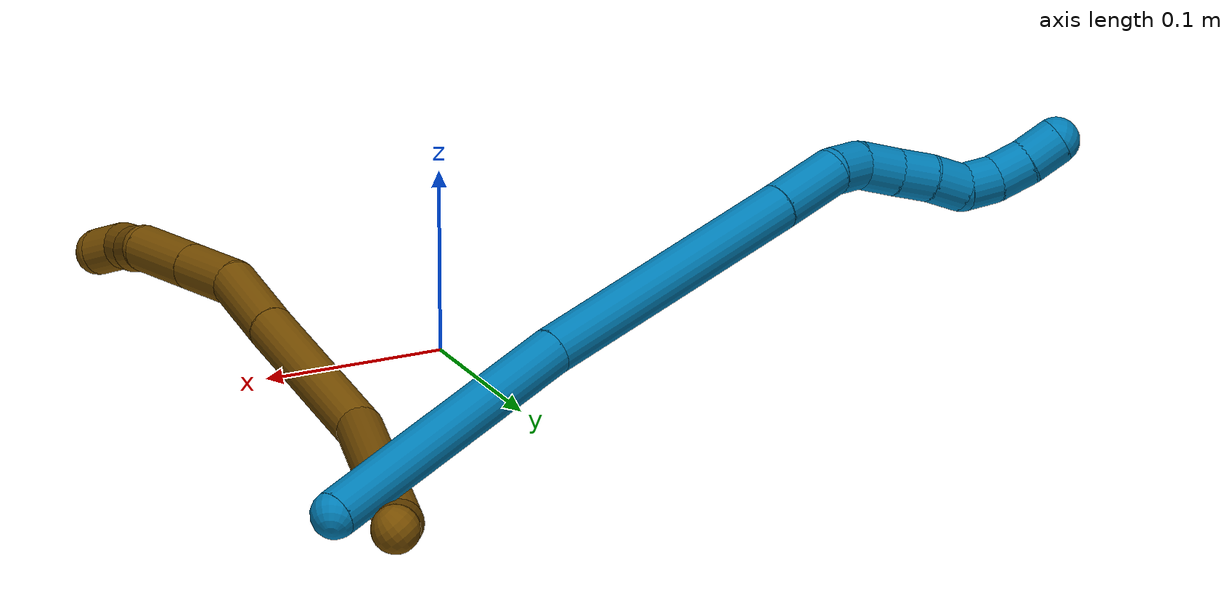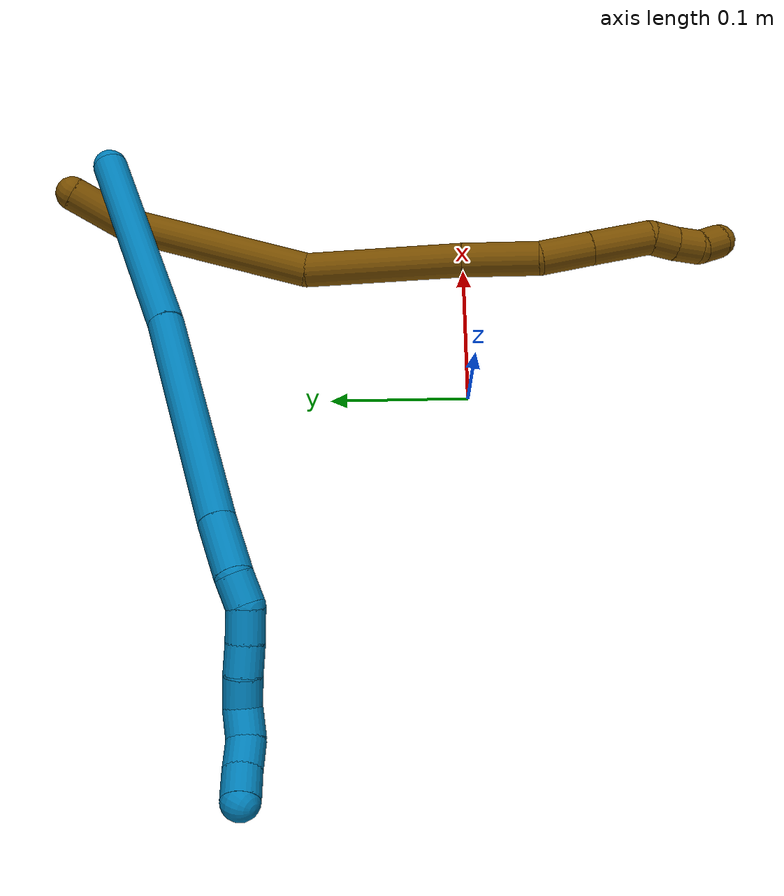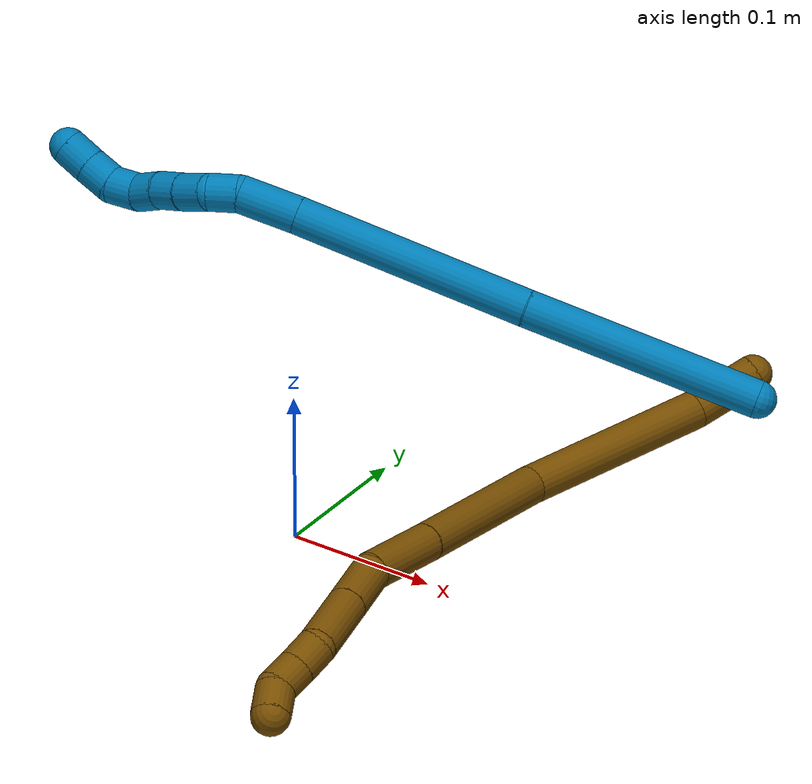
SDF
<sdf version="1.7">
 <world name="default">
  <model name="9">
   <static>0</static>
   <link name="9">
    <collision name="collision-cylinder-e_1_1_4">
     <pose>-0.047143 -5e-06 0.063397 7.5e-05 -0.639407 -2.5e-05</pose>
     <geometry><cylinder><radius>0.0125</radius><length>0.158008</length></cylinder></geometry>
     <surface>
      <friction><ode><mu>1.16</mu><mu2>1.16</mu2><slip1>0</slip1><slip2>0</slip2></ode></friction>
      <contact><ode><kp>1e+06</kp><kd>1</kd><max_vel>0</max_vel><min_depth>0.001</min_depth></ode></contact>
     </surface>
    </collision>
    <visual name="visual-cylinder-e_1_1_4">
     <pose>-0.047143 -5e-06 0.063397 7.5e-05 -0.639407 -2.5e-05</pose>
     <geometry><cylinder><radius>0.0125</radius><length>0.158008</length></cylinder></geometry>
     <material><ambient>0 0.490196 0.709804 1</ambient></material>
    </visual>
    <collision name="collision-cylinder-e_2_4_5">
     <pose>-0.146587 0.000235 0.186958 -0.004058 -0.715581 0.001517</pose>
     <geometry><cylinder><radius>0.0125</radius><length>0.159439</length></cylinder></geometry>
     <surface>
      <friction><ode><mu>1.16</mu><mu2>1.16</mu2><slip1>0</slip1><slip2>0</slip2></ode></friction>
      <contact><ode><kp>1e+06</kp><kd>1</kd><max_vel>0</max_vel><min_depth>0.001</min_depth></ode></contact>
     </surface>
    </collision>
    <visual name="visual-cylinder-e_2_4_5">
     <pose>-0.146587 0.000235 0.186958 -0.004058 -0.715581 0.001517</pose>
     <geometry><cylinder><radius>0.0125</radius><length>0.159439</length></cylinder></geometry>
     <material><ambient>0 0.490196 0.709804 1</ambient></material>
    </visual>
    <collision name="collision-cylinder-e_3_5_6">
     <pose>-0.211496 1.7e-05 0.262564 0.029875 -0.684557 -0.010645</pose>
     <geometry><cylinder><radius>0.0125</radius><length>0.039881</length></cylinder></geometry>
     <surface>
      <friction><ode><mu>1.16</mu><mu2>1.16</mu2><slip1>0</slip1><slip2>0</slip2></ode></friction>
      <contact><ode><kp>1e+06</kp><kd>1</kd><max_vel>0</max_vel><min_depth>0.001</min_depth></ode></contact>
     </surface>
    </collision>
    <visual name="visual-cylinder-e_3_5_6">
     <pose>-0.211496 1.7e-05 0.262564 0.029875 -0.684557 -0.010645</pose>
     <geometry><cylinder><radius>0.0125</radius><length>0.039881</length></cylinder></geometry>
     <material><ambient>0 0.490196 0.709804 1</ambient></material>
    </visual>
    <collision name="collision-cylinder-e_4_6_7">
     <pose>-0.230953 -0.003731 0.284847 0.447863 -0.733976 -0.174651</pose>
     <geometry><cylinder><radius>0.0125</radius><length>0.020445</length></cylinder></geometry>
     <surface>
      <friction><ode><mu>1.16</mu><mu2>1.16</mu2><slip1>0</slip1><slip2>0</slip2></ode></friction>
      <contact><ode><kp>1e+06</kp><kd>1</kd><max_vel>0</max_vel><min_depth>0.001</min_depth></ode></contact>
     </surface>
    </collision>
    <visual name="visual-cylinder-e_4_6_7">
     <pose>-0.230953 -0.003731 0.284847 0.447863 -0.733976 -0.174651</pose>
     <geometry><cylinder><radius>0.0125</radius><length>0.020445</length></cylinder></geometry>
     <material><ambient>0 0.490196 0.709804 1</ambient></material>
    </visual>
    <collision name="collision-cylinder-e_5_7_8">
     <pose>-0.247754 -0.010732 0.294652 0.897313 -1.12548 -0.589609</pose>
     <geometry><cylinder><radius>0.0125</radius><length>0.022059</length></cylinder></geometry>
     <surface>
      <friction><ode><mu>1.16</mu><mu2>1.16</mu2><slip1>0</slip1><slip2>0</slip2></ode></friction>
      <contact><ode><kp>1e+06</kp><kd>1</kd><max_vel>0</max_vel><min_depth>0.001</min_depth></ode></contact>
     </surface>
    </collision>
    <visual name="visual-cylinder-e_5_7_8">
     <pose>-0.247754 -0.010732 0.294652 0.897313 -1.12548 -0.589609</pose>
     <geometry><cylinder><radius>0.0125</radius><length>0.022059</length></cylinder></geometry>
     <material><ambient>0 0.490196 0.709804 1</ambient></material>
    </visual>
    <collision name="collision-cylinder-e_6_8_9">
     <pose>-0.267028 -0.017272 0.300116 0.846563 -1.18605 -0.58955</pose>
     <geometry><cylinder><radius>0.0125</radius><length>0.020112</length></cylinder></geometry>
     <surface>
      <friction><ode><mu>1.16</mu><mu2>1.16</mu2><slip1>0</slip1><slip2>0</slip2></ode></friction>
      <contact><ode><kp>1e+06</kp><kd>1</kd><max_vel>0</max_vel><min_depth>0.001</min_depth></ode></contact>
     </surface>
    </collision>
    <visual name="visual-cylinder-e_6_8_9">
     <pose>-0.267028 -0.017272 0.300116 0.846563 -1.18605 -0.58955</pose>
     <geometry><cylinder><radius>0.0125</radius><length>0.020112</length></cylinder></geometry>
     <material><ambient>0 0.490196 0.709804 1</ambient></material>
    </visual>
    <collision name="collision-cylinder-e_7_9_10">
     <pose>-0.285281 -0.024099 0.304687 1.09304 -1.10376 -0.716738</pose>
     <geometry><cylinder><radius>0.0125</radius><length>0.020006</length></cylinder></geometry>
     <surface>
      <friction><ode><mu>1.16</mu><mu2>1.16</mu2><slip1>0</slip1><slip2>0</slip2></ode></friction>
      <contact><ode><kp>1e+06</kp><kd>1</kd><max_vel>0</max_vel><min_depth>0.001</min_depth></ode></contact>
     </surface>
    </collision>
    <visual name="visual-cylinder-e_7_9_10">
     <pose>-0.285281 -0.024099 0.304687 1.09304 -1.10376 -0.716738</pose>
     <geometry><cylinder><radius>0.0125</radius><length>0.020006</length></cylinder></geometry>
     <material><ambient>0 0.490196 0.709804 1</ambient></material>
    </visual>
    <collision name="collision-cylinder-e_8_10_11">
     <pose>-0.302299 -0.029287 0.312559 0.20221 -0.938697 -0.10281</pose>
     <geometry><cylinder><radius>0.0125</radius><length>0.020044</length></cylinder></geometry>
     <surface>
      <friction><ode><mu>1.16</mu><mu2>1.16</mu2><slip1>0</slip1><slip2>0</slip2></ode></friction>
      <contact><ode><kp>1e+06</kp><kd>1</kd><max_vel>0</max_vel><min_depth>0.001</min_depth></ode></contact>
     </surface>
    </collision>
    <visual name="visual-cylinder-e_8_10_11">
     <pose>-0.302299 -0.029287 0.312559 0.20221 -0.938697 -0.10281</pose>
     <geometry><cylinder><radius>0.0125</radius><length>0.020044</length></cylinder></geometry>
     <material><ambient>0 0.490196 0.709804 1</ambient></material>
    </visual>
    <collision name="collision-cylinder-e_9_11_12">
     <pose>-0.318264 -0.02787 0.323939 -0.437037 -0.907385 0.215725</pose>
     <geometry><cylinder><radius>0.0125</radius><length>0.020001</length></cylinder></geometry>
     <surface>
      <friction><ode><mu>1.16</mu><mu2>1.16</mu2><slip1>0</slip1><slip2>0</slip2></ode></friction>
      <contact><ode><kp>1e+06</kp><kd>1</kd><max_vel>0</max_vel><min_depth>0.001</min_depth></ode></contact>
     </surface>
    </collision>
    <visual name="visual-cylinder-e_9_11_12">
     <pose>-0.318264 -0.02787 0.323939 -0.437037 -0.907385 0.215725</pose>
     <geometry><cylinder><radius>0.0125</radius><length>0.020001</length></cylinder></geometry>
     <material><ambient>0 0.490196 0.709804 1</ambient></material>
    </visual>
    <collision name="collision-cylinder-e_10_12_2">
     <pose>-0.333201 -0.022098 0.33586 -0.463011 -0.783264 0.194086</pose>
     <geometry><cylinder><radius>0.0125</radius><length>0.020005</length></cylinder></geometry>
     <surface>
      <friction><ode><mu>1.16</mu><mu2>1.16</mu2><slip1>0</slip1><slip2>0</slip2></ode></friction>
      <contact><ode><kp>1e+06</kp><kd>1</kd><max_vel>0</max_vel><min_depth>0.001</min_depth></ode></contact>
     </surface>
    </collision>
    <visual name="visual-cylinder-e_10_12_2">
     <pose>-0.333201 -0.022098 0.33586 -0.463011 -0.783264 0.194086</pose>
     <geometry><cylinder><radius>0.0125</radius><length>0.020005</length></cylinder></geometry>
     <material><ambient>0 0.490196 0.709804 1</ambient></material>
    </visual>
    <collision name="collision-sphere-2">
     <pose>-0.340258 -0.018932 0.342202 0 -0 0</pose>
     <geometry><sphere><radius>0.0125</radius></sphere></geometry>
     <surface>
      <friction><ode><mu>1.16</mu><mu2>1.16</mu2><slip1>0</slip1><slip2>0</slip2></ode></friction>
      <contact><ode><kp>1e+06</kp><kd>1</kd><max_vel>0</max_vel><min_depth>0.001</min_depth></ode></contact>
     </surface>
    </collision>
    <visual name="visual-sphere-2">
     <pose>-0.340258 -0.018932 0.342202 0 -0 0</pose>
     <geometry><sphere><radius>0.0125</radius></sphere></geometry>
     <material><ambient>0 0.490196 0.709804 1</ambient></material>
    </visual>
    <collision name="collision-sphere-12">
     <pose>-0.326143 -0.025264 0.329519 0 -0 0</pose>
     <geometry><sphere><radius>0.0125</radius></sphere></geometry>
     <surface>
      <friction><ode><mu>1.16</mu><mu2>1.16</mu2><slip1>0</slip1><slip2>0</slip2></ode></friction>
      <contact><ode><kp>1e+06</kp><kd>1</kd><max_vel>0</max_vel><min_depth>0.001</min_depth></ode></contact>
     </surface>
    </collision>
    <visual name="visual-sphere-12">
     <pose>-0.326143 -0.025264 0.329519 0 -0 0</pose>
     <geometry><sphere><radius>0.0125</radius></sphere></geometry>
     <material><ambient>0 0.490196 0.709804 1</ambient></material>
    </visual>
    <collision name="collision-sphere-11">
     <pose>-0.310384 -0.030477 0.318359 0 -0 0</pose>
     <geometry><sphere><radius>0.0125</radius></sphere></geometry>
     <surface>
      <friction><ode><mu>1.16</mu><mu2>1.16</mu2><slip1>0</slip1><slip2>0</slip2></ode></friction>
      <contact><ode><kp>1e+06</kp><kd>1</kd><max_vel>0</max_vel><min_depth>0.001</min_depth></ode></contact>
     </surface>
    </collision>
    <visual name="visual-sphere-11">
     <pose>-0.310384 -0.030477 0.318359 0 -0 0</pose>
     <geometry><sphere><radius>0.0125</radius></sphere></geometry>
     <material><ambient>0 0.490196 0.709804 1</ambient></material>
    </visual>
    <collision name="collision-sphere-10">
     <pose>-0.294213 -0.028098 0.306758 0 -0 0</pose>
     <geometry><sphere><radius>0.0125</radius></sphere></geometry>
     <surface>
      <friction><ode><mu>1.16</mu><mu2>1.16</mu2><slip1>0</slip1><slip2>0</slip2></ode></friction>
      <contact><ode><kp>1e+06</kp><kd>1</kd><max_vel>0</max_vel><min_depth>0.001</min_depth></ode></contact>
     </surface>
    </collision>
    <visual name="visual-sphere-10">
     <pose>-0.294213 -0.028098 0.306758 0 -0 0</pose>
     <geometry><sphere><radius>0.0125</radius></sphere></geometry>
     <material><ambient>0 0.490196 0.709804 1</ambient></material>
    </visual>
    <collision name="collision-sphere-9">
     <pose>-0.276349 -0.020099 0.302616 0 -0 0</pose>
     <geometry><sphere><radius>0.0125</radius></sphere></geometry>
     <surface>
      <friction><ode><mu>1.16</mu><mu2>1.16</mu2><slip1>0</slip1><slip2>0</slip2></ode></friction>
      <contact><ode><kp>1e+06</kp><kd>1</kd><max_vel>0</max_vel><min_depth>0.001</min_depth></ode></contact>
     </surface>
    </collision>
    <visual name="visual-sphere-9">
     <pose>-0.276349 -0.020099 0.302616 0 -0 0</pose>
     <geometry><sphere><radius>0.0125</radius></sphere></geometry>
     <material><ambient>0 0.490196 0.709804 1</ambient></material>
    </visual>
    <collision name="collision-sphere-4">
     <pose>-0.094286 -1e-05 0.126793 0 -0 0</pose>
     <geometry><sphere><radius>0.0125</radius></sphere></geometry>
     <surface>
      <friction><ode><mu>1.16</mu><mu2>1.16</mu2><slip1>0</slip1><slip2>0</slip2></ode></friction>
      <contact><ode><kp>1e+06</kp><kd>1</kd><max_vel>0</max_vel><min_depth>0.001</min_depth></ode></contact>
     </surface>
    </collision>
    <visual name="visual-sphere-4">
     <pose>-0.094286 -1e-05 0.126793 0 -0 0</pose>
     <geometry><sphere><radius>0.0125</radius></sphere></geometry>
     <material><ambient>0 0.490196 0.709804 1</ambient></material>
    </visual>
    <collision name="collision-sphere-1">
     <geometry><sphere><radius>0.0125</radius></sphere></geometry>
     <surface>
      <friction><ode><mu>1.16</mu><mu2>1.16</mu2><slip1>0</slip1><slip2>0</slip2></ode></friction>
      <contact><ode><kp>1e+06</kp><kd>1</kd><max_vel>0</max_vel><min_depth>0.001</min_depth></ode></contact>
     </surface>
    </collision>
    <visual name="visual-sphere-1">
     <geometry><sphere><radius>0.0125</radius></sphere></geometry>
     <material><ambient>0 0.490196 0.709804 1</ambient></material>
    </visual>
    <collision name="collision-sphere-8">
     <pose>-0.257707 -0.014445 0.297615 0 -0 0</pose>
     <geometry><sphere><radius>0.0125</radius></sphere></geometry>
     <surface>
      <friction><ode><mu>1.16</mu><mu2>1.16</mu2><slip1>0</slip1><slip2>0</slip2></ode></friction>
      <contact><ode><kp>1e+06</kp><kd>1</kd><max_vel>0</max_vel><min_depth>0.001</min_depth></ode></contact>
     </surface>
    </collision>
    <visual name="visual-sphere-8">
     <pose>-0.257707 -0.014445 0.297615 0 -0 0</pose>
     <geometry><sphere><radius>0.0125</radius></sphere></geometry>
     <material><ambient>0 0.490196 0.709804 1</ambient></material>
    </visual>
    <collision name="collision-sphere-5">
     <pose>-0.198887 0.000479 0.247123 0 -0 0</pose>
     <geometry><sphere><radius>0.0125</radius></sphere></geometry>
     <surface>
      <friction><ode><mu>1.16</mu><mu2>1.16</mu2><slip1>0</slip1><slip2>0</slip2></ode></friction>
      <contact><ode><kp>1e+06</kp><kd>1</kd><max_vel>0</max_vel><min_depth>0.001</min_depth></ode></contact>
     </surface>
    </collision>
    <visual name="visual-sphere-5">
     <pose>-0.198887 0.000479 0.247123 0 -0 0</pose>
     <geometry><sphere><radius>0.0125</radius></sphere></geometry>
     <material><ambient>0 0.490196 0.709804 1</ambient></material>
    </visual>
    <collision name="collision-sphere-6">
     <pose>-0.224105 -0.000444 0.278005 0 -0 0</pose>
     <geometry><sphere><radius>0.0125</radius></sphere></geometry>
     <surface>
      <friction><ode><mu>1.16</mu><mu2>1.16</mu2><slip1>0</slip1><slip2>0</slip2></ode></friction>
      <contact><ode><kp>1e+06</kp><kd>1</kd><max_vel>0</max_vel><min_depth>0.001</min_depth></ode></contact>
     </surface>
    </collision>
    <visual name="visual-sphere-6">
     <pose>-0.224105 -0.000444 0.278005 0 -0 0</pose>
     <geometry><sphere><radius>0.0125</radius></sphere></geometry>
     <material><ambient>0 0.490196 0.709804 1</ambient></material>
    </visual>
    <collision name="collision-sphere-7">
     <pose>-0.2378 -0.007018 0.291689 0 -0 0</pose>
     <geometry><sphere><radius>0.0125</radius></sphere></geometry>
     <surface>
      <friction><ode><mu>1.16</mu><mu2>1.16</mu2><slip1>0</slip1><slip2>0</slip2></ode></friction>
      <contact><ode><kp>1e+06</kp><kd>1</kd><max_vel>0</max_vel><min_depth>0.001</min_depth></ode></contact>
     </surface>
    </collision>
    <visual name="visual-sphere-7">
     <pose>-0.2378 -0.007018 0.291689 0 -0 0</pose>
     <geometry><sphere><radius>0.0125</radius></sphere></geometry>
     <material><ambient>0 0.490196 0.709804 1</ambient></material>
    </visual>
    <inertial>
     <pose>-0.159222 -0.005383 0.18843 0 -0 0</pose>
     <mass>0.5</mass>
     <inertia>
      <ixx>0.000512</ixx>
      <ixy>0</ixy>
      <ixz>0</ixz>
      <iyy>0.000693</iyy>
      <iyz>0</iyz>
      <izz>0.000466</izz>
     </inertia>
    </inertial>
   </link>
   <pose>0.176683 0.261126 0.03072 1.06262 -0.167689 -0.472239</pose>
  </model>
  <model name="12">
   <static>0</static>
   <link name="12">
    <collision name="collision-cylinder-e_1_1_4">
     <pose>-0.014471 -0.017422 -0.003614 1.77535 -0.682795 -0.823287</pose>
     <geometry><cylinder><radius>0.0125</radius><length>0.045869</length></cylinder></geometry>
     <surface>
      <friction><ode><mu>1.16</mu><mu2>1.16</mu2><slip1>0</slip1><slip2>0</slip2></ode></friction>
      <contact><ode><kp>1e+06</kp><kd>1</kd><max_vel>0</max_vel><min_depth>0.001</min_depth></ode></contact>
     </surface>
    </collision>
    <visual name="visual-cylinder-e_1_1_4">
     <pose>-0.014471 -0.017422 -0.003614 1.77535 -0.682795 -0.823287</pose>
     <geometry><cylinder><radius>0.0125</radius><length>0.045869</length></cylinder></geometry>
     <material><ambient>0.466667 0.301961 0 1</ambient></material>
    </visual>
    <collision name="collision-cylinder-e_2_4_5">
     <pose>-0.07419 -0.085516 0.005936 1.31662 -0.712721 -0.560642</pose>
     <geometry><cylinder><radius>0.0125</radius><length>0.138398</length></cylinder></geometry>
     <surface>
      <friction><ode><mu>1.16</mu><mu2>1.16</mu2><slip1>0</slip1><slip2>0</slip2></ode></friction>
      <contact><ode><kp>1e+06</kp><kd>1</kd><max_vel>0</max_vel><min_depth>0.001</min_depth></ode></contact>
     </surface>
    </collision>
    <visual name="visual-cylinder-e_2_4_5">
     <pose>-0.07419 -0.085516 0.005936 1.31662 -0.712721 -0.560642</pose>
     <geometry><cylinder><radius>0.0125</radius><length>0.138398</length></cylinder></geometry>
     <material><ambient>0.466667 0.301961 0 1</ambient></material>
    </visual>
    <collision name="collision-cylinder-e_3_5_6">
     <pose>-0.148374 -0.178716 0.045549 1.0144 -0.523917 -0.295808</pose>
     <geometry><cylinder><radius>0.0125</radius><length>0.115676</length></cylinder></geometry>
     <surface>
      <friction><ode><mu>1.16</mu><mu2>1.16</mu2><slip1>0</slip1><slip2>0</slip2></ode></friction>
      <contact><ode><kp>1e+06</kp><kd>1</kd><max_vel>0</max_vel><min_depth>0.001</min_depth></ode></contact>
     </surface>
    </collision>
    <visual name="visual-cylinder-e_3_5_6">
     <pose>-0.148374 -0.178716 0.045549 1.0144 -0.523917 -0.295808</pose>
     <geometry><cylinder><radius>0.0125</radius><length>0.115676</length></cylinder></geometry>
     <material><ambient>0.466667 0.301961 0 1</ambient></material>
    </visual>
    <collision name="collision-cylinder-e_4_6_7">
     <pose>-0.19213 -0.241826 0.083954 1.04456 -0.556865 -0.326154</pose>
     <geometry><cylinder><radius>0.0125</radius><length>0.056084</length></cylinder></geometry>
     <surface>
      <friction><ode><mu>1.16</mu><mu2>1.16</mu2><slip1>0</slip1><slip2>0</slip2></ode></friction>
      <contact><ode><kp>1e+06</kp><kd>1</kd><max_vel>0</max_vel><min_depth>0.001</min_depth></ode></contact>
     </surface>
    </collision>
    <visual name="visual-cylinder-e_4_6_7">
     <pose>-0.19213 -0.241826 0.083954 1.04456 -0.556865 -0.326154</pose>
     <geometry><cylinder><radius>0.0125</radius><length>0.056084</length></cylinder></geometry>
     <material><ambient>0.466667 0.301961 0 1</ambient></material>
    </visual>
    <collision name="collision-cylinder-e_5_7_8">
     <pose>-0.211809 -0.279243 0.103866 1.12932 -0.255262 -0.162225</pose>
     <geometry><cylinder><radius>0.0125</radius><length>0.038482</length></cylinder></geometry>
     <surface>
      <friction><ode><mu>1.16</mu><mu2>1.16</mu2><slip1>0</slip1><slip2>0</slip2></ode></friction>
      <contact><ode><kp>1e+06</kp><kd>1</kd><max_vel>0</max_vel><min_depth>0.001</min_depth></ode></contact>
     </surface>
    </collision>
    <visual name="visual-cylinder-e_5_7_8">
     <pose>-0.211809 -0.279243 0.103866 1.12932 -0.255262 -0.162225</pose>
     <geometry><cylinder><radius>0.0125</radius><length>0.038482</length></cylinder></geometry>
     <material><ambient>0.466667 0.301961 0 1</ambient></material>
    </visual>
    <collision name="collision-cylinder-e_6_8_9">
     <pose>-0.222488 -0.315954 0.121083 1.13475 -0.259406 -0.165864</pose>
     <geometry><cylinder><radius>0.0125</radius><length>0.045379</length></cylinder></geometry>
     <surface>
      <friction><ode><mu>1.16</mu><mu2>1.16</mu2><slip1>0</slip1><slip2>0</slip2></ode></friction>
      <contact><ode><kp>1e+06</kp><kd>1</kd><max_vel>0</max_vel><min_depth>0.001</min_depth></ode></contact>
     </surface>
    </collision>
    <visual name="visual-cylinder-e_6_8_9">
     <pose>-0.222488 -0.315954 0.121083 1.13475 -0.259406 -0.165864</pose>
     <geometry><cylinder><radius>0.0125</radius><length>0.045379</length></cylinder></geometry>
     <material><ambient>0.466667 0.301961 0 1</ambient></material>
    </visual>
    <collision name="collision-cylinder-e_7_9_10">
     <pose>-0.232289 -0.345013 0.130493 1.5548 -0.409149 -0.40283</pose>
     <geometry><cylinder><radius>0.0125</radius><length>0.020016</length></cylinder></geometry>
     <surface>
      <friction><ode><mu>1.16</mu><mu2>1.16</mu2><slip1>0</slip1><slip2>0</slip2></ode></friction>
      <contact><ode><kp>1e+06</kp><kd>1</kd><max_vel>0</max_vel><min_depth>0.001</min_depth></ode></contact>
     </surface>
    </collision>
    <visual name="visual-cylinder-e_7_9_10">
     <pose>-0.232289 -0.345013 0.130493 1.5548 -0.409149 -0.40283</pose>
     <geometry><cylinder><radius>0.0125</radius><length>0.020016</length></cylinder></geometry>
     <material><ambient>0.466667 0.301961 0 1</ambient></material>
    </visual>
    <collision name="collision-cylinder-e_8_10_11">
     <pose>-0.240465 -0.363184 0.131949 1.42622 -0.432515 -0.37557</pose>
     <geometry><cylinder><radius>0.0125</radius><length>0.020013</length></cylinder></geometry>
     <surface>
      <friction><ode><mu>1.16</mu><mu2>1.16</mu2><slip1>0</slip1><slip2>0</slip2></ode></friction>
      <contact><ode><kp>1e+06</kp><kd>1</kd><max_vel>0</max_vel><min_depth>0.001</min_depth></ode></contact>
     </surface>
    </collision>
    <visual name="visual-cylinder-e_8_10_11">
     <pose>-0.240465 -0.363184 0.131949 1.42622 -0.432515 -0.37557</pose>
     <geometry><cylinder><radius>0.0125</radius><length>0.020013</length></cylinder></geometry>
     <material><ambient>0.466667 0.301961 0 1</ambient></material>
    </visual>
    <collision name="collision-cylinder-e_9_11_2">
     <pose>-0.243803 -0.381976 0.135265 1.36877 0.085379 0.069679</pose>
     <geometry><cylinder><radius>0.0125</radius><length>0.020084</length></cylinder></geometry>
     <surface>
      <friction><ode><mu>1.16</mu><mu2>1.16</mu2><slip1>0</slip1><slip2>0</slip2></ode></friction>
      <contact><ode><kp>1e+06</kp><kd>1</kd><max_vel>0</max_vel><min_depth>0.001</min_depth></ode></contact>
     </surface>
    </collision>
    <visual name="visual-cylinder-e_9_11_2">
     <pose>-0.243803 -0.381976 0.135265 1.36877 0.085379 0.069679</pose>
     <geometry><cylinder><radius>0.0125</radius><length>0.020084</length></cylinder></geometry>
     <material><ambient>0.466667 0.301961 0 1</ambient></material>
    </visual>
    <collision name="collision-sphere-2">
     <pose>-0.242946 -0.391778 0.137273 0 -0 0</pose>
     <geometry><sphere><radius>0.0125</radius></sphere></geometry>
     <surface>
      <friction><ode><mu>1.16</mu><mu2>1.16</mu2><slip1>0</slip1><slip2>0</slip2></ode></friction>
      <contact><ode><kp>1e+06</kp><kd>1</kd><max_vel>0</max_vel><min_depth>0.001</min_depth></ode></contact>
     </surface>
    </collision>
    <visual name="visual-sphere-2">
     <pose>-0.242946 -0.391778 0.137273 0 -0 0</pose>
     <geometry><sphere><radius>0.0125</radius></sphere></geometry>
     <material><ambient>0.466667 0.301961 0 1</ambient></material>
    </visual>
    <collision name="collision-sphere-11">
     <pose>-0.244659 -0.372174 0.133257 0 -0 0</pose>
     <geometry><sphere><radius>0.0125</radius></sphere></geometry>
     <surface>
      <friction><ode><mu>1.16</mu><mu2>1.16</mu2><slip1>0</slip1><slip2>0</slip2></ode></friction>
      <contact><ode><kp>1e+06</kp><kd>1</kd><max_vel>0</max_vel><min_depth>0.001</min_depth></ode></contact>
     </surface>
    </collision>
    <visual name="visual-sphere-11">
     <pose>-0.244659 -0.372174 0.133257 0 -0 0</pose>
     <geometry><sphere><radius>0.0125</radius></sphere></geometry>
     <material><ambient>0.466667 0.301961 0 1</ambient></material>
    </visual>
    <collision name="collision-sphere-10">
     <pose>-0.236271 -0.354194 0.13064 0 -0 0</pose>
     <geometry><sphere><radius>0.0125</radius></sphere></geometry>
     <surface>
      <friction><ode><mu>1.16</mu><mu2>1.16</mu2><slip1>0</slip1><slip2>0</slip2></ode></friction>
      <contact><ode><kp>1e+06</kp><kd>1</kd><max_vel>0</max_vel><min_depth>0.001</min_depth></ode></contact>
     </surface>
    </collision>
    <visual name="visual-sphere-10">
     <pose>-0.236271 -0.354194 0.13064 0 -0 0</pose>
     <geometry><sphere><radius>0.0125</radius></sphere></geometry>
     <material><ambient>0.466667 0.301961 0 1</ambient></material>
    </visual>
    <collision name="collision-sphere-9">
     <pose>-0.228308 -0.335833 0.130346 0 -0 0</pose>
     <geometry><sphere><radius>0.0125</radius></sphere></geometry>
     <surface>
      <friction><ode><mu>1.16</mu><mu2>1.16</mu2><slip1>0</slip1><slip2>0</slip2></ode></friction>
      <contact><ode><kp>1e+06</kp><kd>1</kd><max_vel>0</max_vel><min_depth>0.001</min_depth></ode></contact>
     </surface>
    </collision>
    <visual name="visual-sphere-9">
     <pose>-0.228308 -0.335833 0.130346 0 -0 0</pose>
     <geometry><sphere><radius>0.0125</radius></sphere></geometry>
     <material><ambient>0.466667 0.301961 0 1</ambient></material>
    </visual>
    <collision name="collision-sphere-4">
     <pose>-0.028941 -0.034843 -0.007228 0 -0 0</pose>
     <geometry><sphere><radius>0.0125</radius></sphere></geometry>
     <surface>
      <friction><ode><mu>1.16</mu><mu2>1.16</mu2><slip1>0</slip1><slip2>0</slip2></ode></friction>
      <contact><ode><kp>1e+06</kp><kd>1</kd><max_vel>0</max_vel><min_depth>0.001</min_depth></ode></contact>
     </surface>
    </collision>
    <visual name="visual-sphere-4">
     <pose>-0.028941 -0.034843 -0.007228 0 -0 0</pose>
     <geometry><sphere><radius>0.0125</radius></sphere></geometry>
     <material><ambient>0.466667 0.301961 0 1</ambient></material>
    </visual>
    <collision name="collision-sphere-1">
     <geometry><sphere><radius>0.0125</radius></sphere></geometry>
     <surface>
      <friction><ode><mu>1.16</mu><mu2>1.16</mu2><slip1>0</slip1><slip2>0</slip2></ode></friction>
      <contact><ode><kp>1e+06</kp><kd>1</kd><max_vel>0</max_vel><min_depth>0.001</min_depth></ode></contact>
     </surface>
    </collision>
    <visual name="visual-sphere-1">
     <geometry><sphere><radius>0.0125</radius></sphere></geometry>
     <material><ambient>0.466667 0.301961 0 1</ambient></material>
    </visual>
    <collision name="collision-sphere-8">
     <pose>-0.216668 -0.296076 0.111821 0 -0 0</pose>
     <geometry><sphere><radius>0.0125</radius></sphere></geometry>
     <surface>
      <friction><ode><mu>1.16</mu><mu2>1.16</mu2><slip1>0</slip1><slip2>0</slip2></ode></friction>
      <contact><ode><kp>1e+06</kp><kd>1</kd><max_vel>0</max_vel><min_depth>0.001</min_depth></ode></contact>
     </surface>
    </collision>
    <visual name="visual-sphere-8">
     <pose>-0.216668 -0.296076 0.111821 0 -0 0</pose>
     <geometry><sphere><radius>0.0125</radius></sphere></geometry>
     <material><ambient>0.466667 0.301961 0 1</ambient></material>
    </visual>
    <collision name="collision-sphere-5">
     <pose>-0.119439 -0.136189 0.0191 0 -0 0</pose>
     <geometry><sphere><radius>0.0125</radius></sphere></geometry>
     <surface>
      <friction><ode><mu>1.16</mu><mu2>1.16</mu2><slip1>0</slip1><slip2>0</slip2></ode></friction>
      <contact><ode><kp>1e+06</kp><kd>1</kd><max_vel>0</max_vel><min_depth>0.001</min_depth></ode></contact>
     </surface>
    </collision>
    <visual name="visual-sphere-5">
     <pose>-0.119439 -0.136189 0.0191 0 -0 0</pose>
     <geometry><sphere><radius>0.0125</radius></sphere></geometry>
     <material><ambient>0.466667 0.301961 0 1</ambient></material>
    </visual>
    <collision name="collision-sphere-6">
     <pose>-0.177309 -0.221242 0.071997 0 -0 0</pose>
     <geometry><sphere><radius>0.0125</radius></sphere></geometry>
     <surface>
      <friction><ode><mu>1.16</mu><mu2>1.16</mu2><slip1>0</slip1><slip2>0</slip2></ode></friction>
      <contact><ode><kp>1e+06</kp><kd>1</kd><max_vel>0</max_vel><min_depth>0.001</min_depth></ode></contact>
     </surface>
    </collision>
    <visual name="visual-sphere-6">
     <pose>-0.177309 -0.221242 0.071997 0 -0 0</pose>
     <geometry><sphere><radius>0.0125</radius></sphere></geometry>
     <material><ambient>0.466667 0.301961 0 1</ambient></material>
    </visual>
    <collision name="collision-sphere-7">
     <pose>-0.206951 -0.262411 0.095911 0 -0 0</pose>
     <geometry><sphere><radius>0.0125</radius></sphere></geometry>
     <surface>
      <friction><ode><mu>1.16</mu><mu2>1.16</mu2><slip1>0</slip1><slip2>0</slip2></ode></friction>
      <contact><ode><kp>1e+06</kp><kd>1</kd><max_vel>0</max_vel><min_depth>0.001</min_depth></ode></contact>
     </surface>
    </collision>
    <visual name="visual-sphere-7">
     <pose>-0.206951 -0.262411 0.095911 0 -0 0</pose>
     <geometry><sphere><radius>0.0125</radius></sphere></geometry>
     <material><ambient>0.466667 0.301961 0 1</ambient></material>
    </visual>
    <inertial>
     <pose>-0.142951 -0.187598 0.056188 0 -0 0</pose>
     <mass>0.5</mass>
     <inertia>
      <ixx>0.000136</ixx>
      <ixy>0</ixy>
      <ixz>0</ixz>
      <iyy>6.1e-05</iyy>
      <iyz>0</iyz>
      <izz>0.000547</izz>
     </inertia>
    </inertial>
   </link>
   <pose>0.156216 0.288622 0.029289 0.595474 0.342708 0.497952</pose>
  </model>
 </world>
</sdf>
